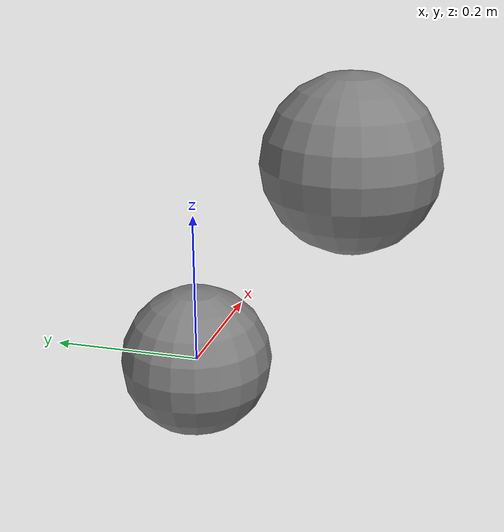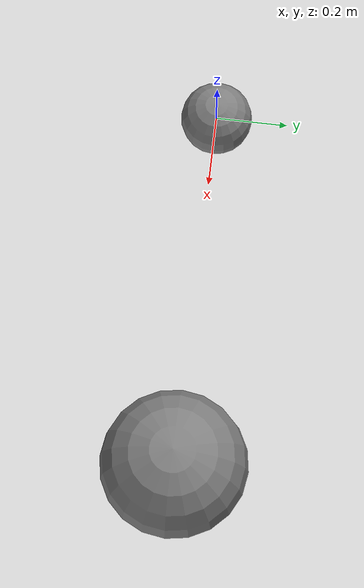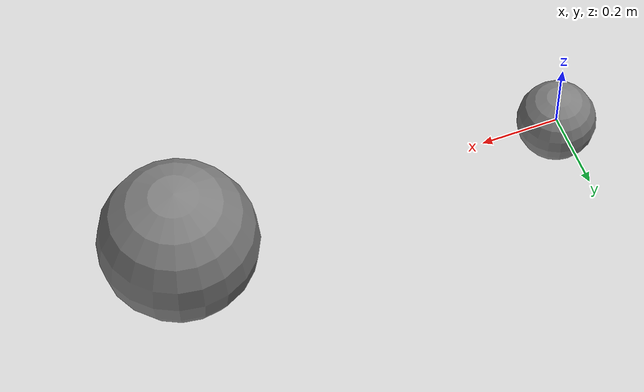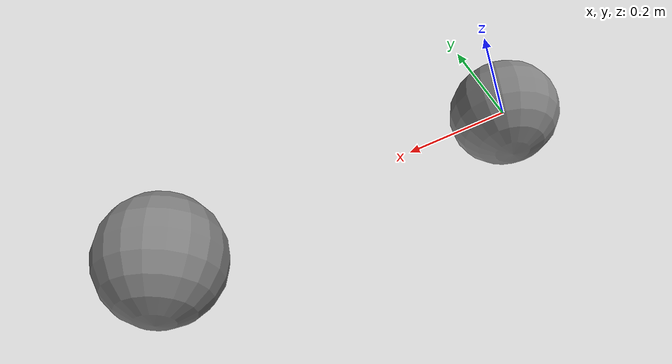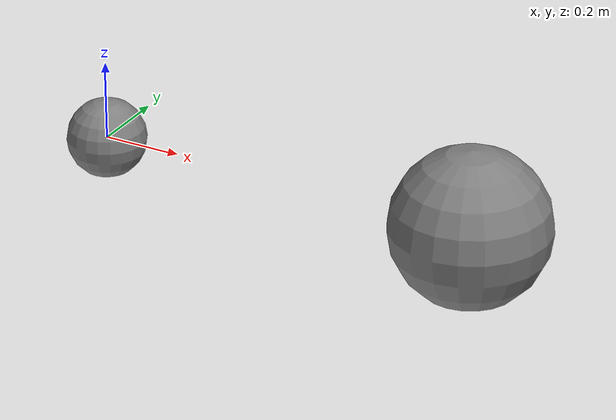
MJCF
<mujoco model="t06">
            <worldbody>
                <body name="b1" pos="0 0 0">
                    <geom name="g1" type="sphere" size="0.1" pos="0 0 0"/>
                </body>
                <body name="b2" pos="1 0 0">
                    <geom name="g2" type="sphere" size="0.2" pos="0 0 0"/>
                </body>
            </worldbody>
            <sensor>
                <distance name="d" geom1="g1" geom2="g2" cutoff="10"/>
            </sensor>
        </mujoco>
